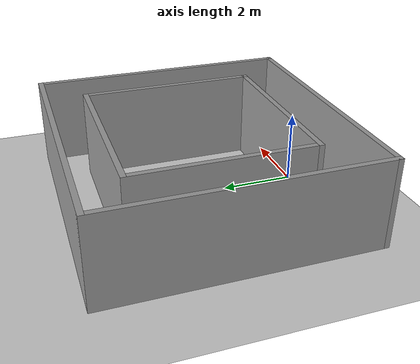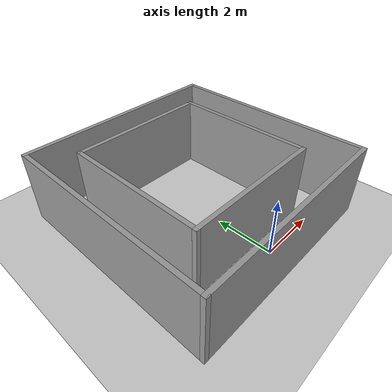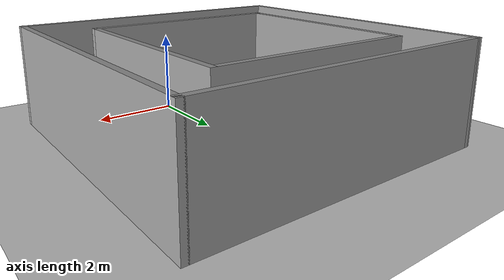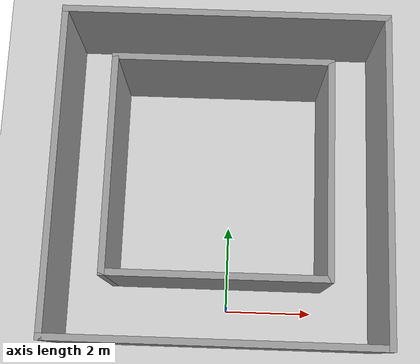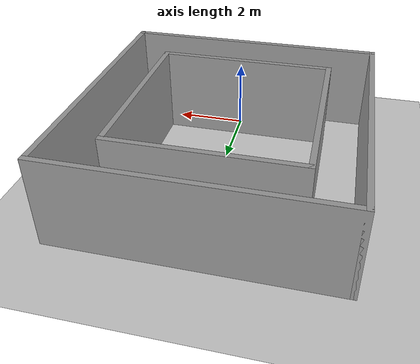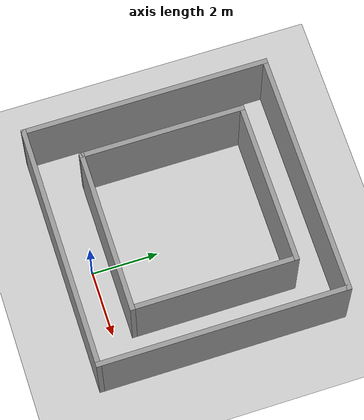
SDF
<sdf version="1.6">
 <world name="default">
  <model name="ground_plane">
   <static>1</static>
   <link name="link">
    <collision name="collision">
     <geometry><plane><normal>0 0 1</normal><size>100 100</size></plane></geometry>
     <surface><friction><ode><mu>100</mu><mu2>50</mu2></ode></friction></surface>
    </collision>
    <visual name="visual">
     <cast_shadows>0</cast_shadows>
     <geometry><plane><normal>0 0 1</normal><size>100 100</size></plane></geometry>
     <material>
      <script><uri>file://media/materials/scripts/gazebo.material</uri><name>Gazebo/Grey</name></script>
     </material>
    </visual>
   </link>
  </model>
  <gravity>0 0 -9.8</gravity>
  <magnetic_field>6e-06 2.3e-05 -4.2e-05</magnetic_field>
  <atmosphere type="adiabatic"/>
  <physics name="default_physics" default="0" type="ode">
   <max_step_size>0.001</max_step_size>
   <real_time_factor>1</real_time_factor>
   <real_time_update_rate>1000</real_time_update_rate>
  </physics>
  <scene><ambient>0.4 0.4 0.4 1</ambient><background>0.7 0.7 0.7 1</background><shadows>1</shadows></scene>
  <spherical_coordinates>
   <surface_model>EARTH_WGS84</surface_model>
   <latitude_deg>0</latitude_deg>
   <longitude_deg>0</longitude_deg>
   <elevation>0</elevation>
   <heading_deg>0</heading_deg>
  </spherical_coordinates>
  <model name="model_hui">
   <pose>-0.210049 2.88802 0 0 -0 0</pose>
   <link name="Wall_0">
    <collision name="Wall_0_Collision">
     <geometry><box><size>7.5 0.15 2.5</size></box></geometry>
     <pose>0 0 1.25 0 -0 0</pose>
    </collision>
    <visual name="Wall_0_Visual">
     <pose>0 0 1.25 0 -0 0</pose>
     <geometry><box><size>7.5 0.15 2.5</size></box></geometry>
     <material>
      <script><uri>file://media/materials/scripts/gazebo.material</uri><name>Gazebo/Grey</name></script>
      <ambient>1 1 1 1</ambient>
     </material>
    </visual>
    <pose>0 3.675 0 0 -0 0</pose>
   </link>
   <link name="Wall_1">
    <collision name="Wall_1_Collision">
     <geometry><box><size>7.5 0.15 2.5</size></box></geometry>
     <pose>0 0 1.25 0 -0 0</pose>
    </collision>
    <visual name="Wall_1_Visual">
     <pose>0 0 1.25 0 -0 0</pose>
     <geometry><box><size>7.5 0.15 2.5</size></box></geometry>
     <material>
      <script><uri>file://media/materials/scripts/gazebo.material</uri><name>Gazebo/Grey</name></script>
      <ambient>1 1 1 1</ambient>
     </material>
    </visual>
    <pose>3.675 0 0 0 0 -1.5708</pose>
   </link>
   <link name="Wall_2">
    <collision name="Wall_2_Collision">
     <geometry><box><size>7.5 0.15 2.5</size></box></geometry>
     <pose>0 0 1.25 0 -0 0</pose>
    </collision>
    <visual name="Wall_2_Visual">
     <pose>0 0 1.25 0 -0 0</pose>
     <geometry><box><size>7.5 0.15 2.5</size></box></geometry>
     <material>
      <script><uri>file://media/materials/scripts/gazebo.material</uri><name>Gazebo/Grey</name></script>
      <ambient>1 1 1 1</ambient>
     </material>
    </visual>
    <pose>0 -3.675 0 0 -0 3.14159</pose>
   </link>
   <link name="Wall_3">
    <collision name="Wall_3_Collision">
     <geometry><box><size>7.5 0.15 2.5</size></box></geometry>
     <pose>0 0 1.25 0 -0 0</pose>
    </collision>
    <visual name="Wall_3_Visual">
     <pose>0 0 1.25 0 -0 0</pose>
     <geometry><box><size>7.5 0.15 2.5</size></box></geometry>
     <material>
      <script><uri>file://media/materials/scripts/gazebo.material</uri><name>Gazebo/Grey</name></script>
      <ambient>1 1 1 1</ambient>
     </material>
    </visual>
    <pose>-3.675 0 0 0 -0 1.5708</pose>
   </link>
   <link name="Wall_5">
    <collision name="Wall_5_Collision">
     <geometry><box><size>5 0.15 2.5</size></box></geometry>
     <pose>0 0 1.25 0 -0 0</pose>
    </collision>
    <visual name="Wall_5_Visual">
     <pose>0 0 1.25 0 -0 0</pose>
     <geometry><box><size>5 0.15 2.5</size></box></geometry>
     <material>
      <script><uri>file://media/materials/scripts/gazebo.material</uri><name>Gazebo/Grey</name></script>
      <ambient>1 1 1 1</ambient>
     </material>
    </visual>
    <pose>-0.037482 2.55905 0 0 -0 0</pose>
   </link>
   <link name="Wall_6">
    <collision name="Wall_6_Collision">
     <geometry><box><size>5 0.15 2.5</size></box></geometry>
     <pose>0 0 1.25 0 -0 0</pose>
    </collision>
    <visual name="Wall_6_Visual">
     <pose>0 0 1.25 0 -0 0</pose>
     <geometry><box><size>5 0.15 2.5</size></box></geometry>
     <material>
      <script><uri>file://media/materials/scripts/gazebo.material</uri><name>Gazebo/Grey</name></script>
      <ambient>1 1 1 1</ambient>
     </material>
    </visual>
    <pose>2.38752 0.134047 0 0 0 -1.5708</pose>
   </link>
   <link name="Wall_7">
    <collision name="Wall_7_Collision">
     <geometry><box><size>5 0.15 2.5</size></box></geometry>
     <pose>0 0 1.25 0 -0 0</pose>
    </collision>
    <visual name="Wall_7_Visual">
     <pose>0 0 1.25 0 -0 0</pose>
     <geometry><box><size>5 0.15 2.5</size></box></geometry>
     <material>
      <script><uri>file://media/materials/scripts/gazebo.material</uri><name>Gazebo/Grey</name></script>
      <ambient>1 1 1 1</ambient>
     </material>
    </visual>
    <pose>-0.037482 -2.29095 0 0 -0 3.14159</pose>
   </link>
   <link name="Wall_8">
    <collision name="Wall_8_Collision">
     <geometry><box><size>5 0.15 2.5</size></box></geometry>
     <pose>0 0 1.25 0 -0 0</pose>
    </collision>
    <visual name="Wall_8_Visual">
     <pose>0 0 1.25 0 -0 0</pose>
     <geometry><box><size>5 0.15 2.5</size></box></geometry>
     <material>
      <script><uri>file://media/materials/scripts/gazebo.material</uri><name>Gazebo/Grey</name></script>
      <ambient>1 1 1 1</ambient>
     </material>
    </visual>
    <pose>-2.46248 0.134047 0 0 -0 1.5708</pose>
   </link>
   <static>1</static>
  </model>
 </world>
</sdf>
